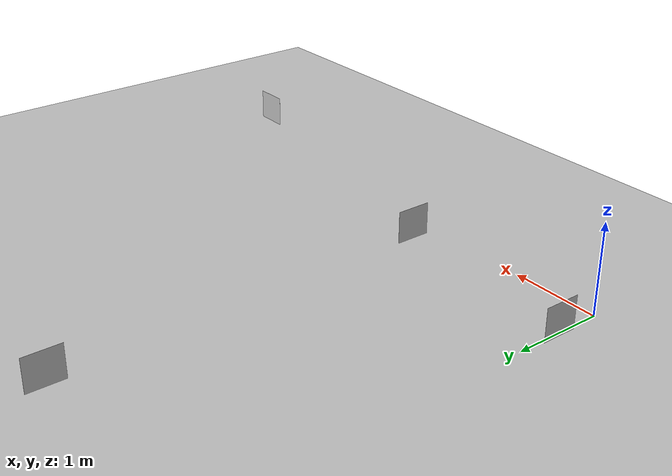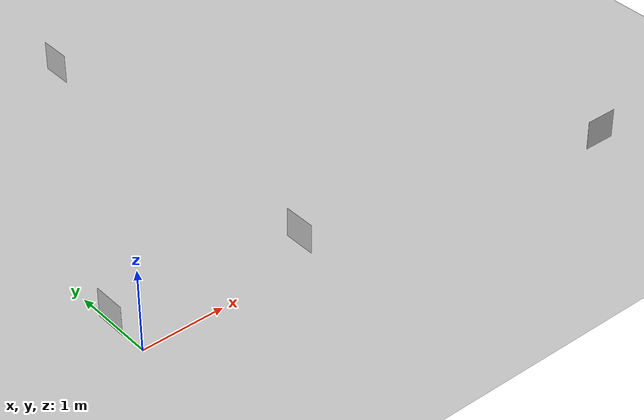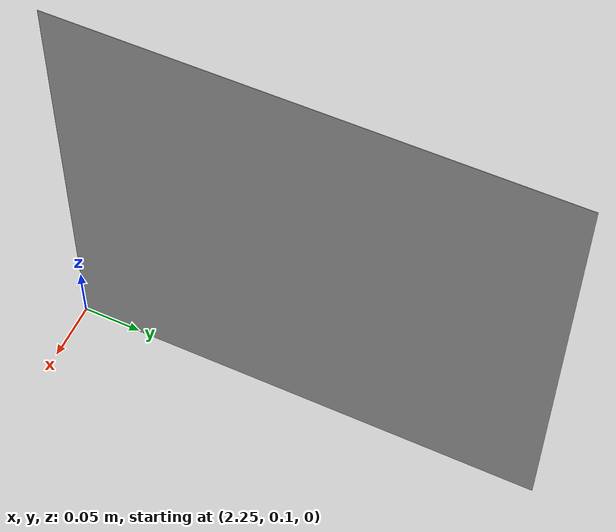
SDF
<sdf version="1.6">
 <world name="default">
  <include><uri>model://sun</uri></include>
  <include><uri>model://ground_plane</uri></include>
  <model name="livingroom_qr">
   <static>true</static>
   <pose>2.25 0.30 0.16 0 1.5708 3.1415</pose>
   <link name="link">
    <visual name="visual">
     <geometry><plane><normal>0 0 1</normal><size>0.4 0.4</size></plane></geometry>
     <material>
      <script>
       <uri>file://media/materials/scripts</uri>
       <uri>file://media/materials/textures</uri>
       <name>Odev/LivingroomQR</name>
      </script>
     </material>
    </visual>
   </link>
  </model>
  <model name="kitchen_qr">
   <static>true</static>
   <pose>-0.02 0.51 0.16 0 1.5708 0.0</pose>
   <link name="link">
    <visual name="visual">
     <geometry><plane><normal>0 0 1</normal><size>0.4 0.4</size></plane></geometry>
     <material>
      <script>
       <uri>file://media/materials/scripts</uri>
       <uri>file://media/materials/textures</uri>
       <name>Odev/KitchenQR</name>
      </script>
     </material>
    </visual>
   </link>
  </model>
  <model name="bedroom_qr">
   <static>true</static>
   <pose>5.99 -0.46 0.16 0 1.5708 1.5708</pose>
   <link name="link">
    <visual name="visual">
     <geometry><plane><normal>0 0 1</normal><size>0.4 0.4</size></plane></geometry>
     <material>
      <script>
       <uri>file://media/materials/scripts</uri>
       <uri>file://media/materials/textures</uri>
       <name>Odev/BedroomQR</name>
      </script>
     </material>
    </visual>
   </link>
  </model>
  <model name="toilet_qr">
   <static>true</static>
   <pose>2.11 4.60 0.16 0 1.5708 0.0</pose>
   <link name="link">
    <visual name="visual">
     <geometry><plane><normal>0 0 1</normal><size>0.4 0.4</size></plane></geometry>
     <material>
      <script>
       <uri>file://media/materials/scripts</uri>
       <uri>file://media/materials/textures</uri>
       <name>Odev/ToiletQR</name>
      </script>
     </material>
    </visual>
   </link>
  </model>
  <scene><ambient>0.4 0.4 0.4 1</ambient><background>0.7 0.7 0.7 1</background><shadows>true</shadows></scene>
 </world>
</sdf>
